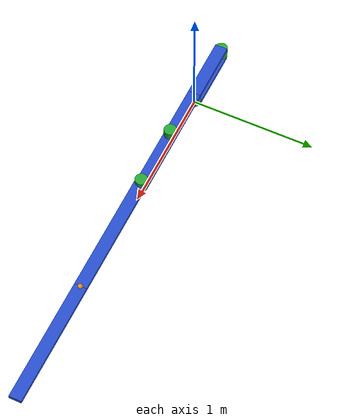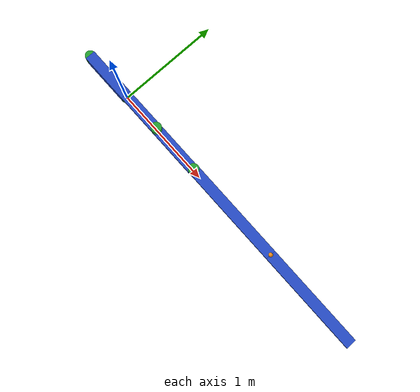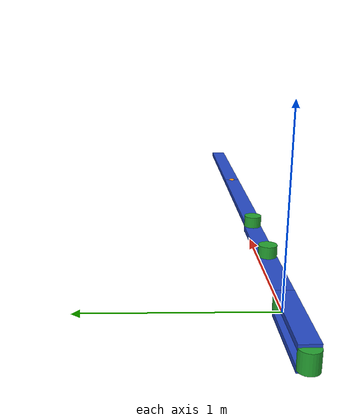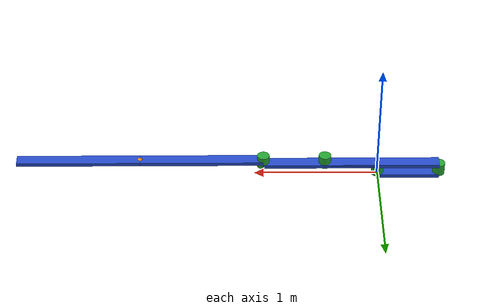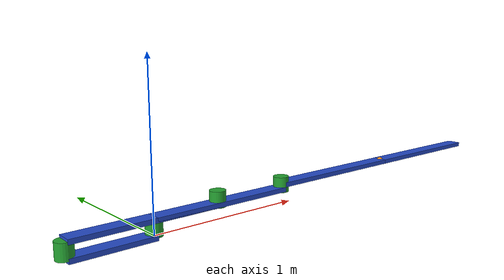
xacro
<?xml version="1.0"?>
<!-- Haptic Device -->
<robot xmlns:xacro="http://www.ros.org/wiki/xacro" name="haptic">

    <!-- Import haptic urdf file -->
    <xacro:include filename="$(find haptic_description)/urdf/haptic.urdf" />

    <!-- Import haptic materials file -->
    <xacro:include filename="$(find haptic_description)/config/materials.urdf" />

    <!-- Import haptic ros2_control description -->
    <xacro:include filename="$(find haptic_description)/ros2_control/haptic.ros2_control.urdf" />

</robot>

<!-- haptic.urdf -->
<robot name = "haptic" xmlns:xacro="http://www.ros.org/wiki/xacro">

  <!-- Used for fixing robot to 'link1' -->
  <link name="world"/>

    <!-- ======================================== Base (Link 5) ============================================== -->
  <link name = "link5">
    <visual>
      <geometry>
        <box size = "0.10 0.50 0.03"/>
      </geometry>
      <material name = "blue"/>
      <origin xyz="-0.25 0 0" rpy="0 0 1.570796326794897" />
    </visual>
    <inertial>
      <mass value="1" />
      <origin xyz="-0.25 0 0" rpy="0 0 1.570796326794897" />
      <inertia ixx="1" ixy="0" ixz="0" iyy="1" iyz="0" izz="1" />
    </inertial>
    <collision>
      <geometry>
        <box size = "0.10 0.50 0.03"/>
      </geometry>
      <material name = "blue"/>
      <origin xyz = "0 0 0"/>
    </collision>
  </link>

  <joint name="base2world" type="fixed">
    <parent link="world"/>
    <child link="link5"/>
  </joint>

  <!-- =============================================== Joint 1 ============================================== -->
  <link name = "revolute1">
    <visual>
      <geometry>
        <cylinder length = "0.1" radius = "0.05"/>
      </geometry>
      <material name = "green"/>
      <origin xyz = "0 0 0.05"/>
    </visual>
    <inertial>
      <mass value="0.15" />
      <origin xyz="0 0 0" rpy="0 0 0" />
      <inertia ixx="0.5" ixy="0" ixz="0" iyy="0.5" iyz="0" izz="0.5" />
    </inertial>
    <collision>
      <geometry>
        <cylinder length = "0.1" radius = "0.05"/>
      </geometry>
      <material name = "green"/>
      <origin xyz = "0 0 0"/>
    </collision>
  </link>

  <joint name = "joint1" type="revolute">
    <parent link = "link5"/>
    <child link = "revolute1"/>
    <origin xyz = "0 0 0" rpy="0 0 0"/>
    <limit effort="1000.0" lower="-1.57" upper="1.57" velocity="0.5"/>
    <axis xyz = "0 0 1"/>
    <dynamics damping="0.2" friction="0.1" />
  </joint>

  <!-- =============================================== Link 1 ============================================== -->
  <link name = "link1">
      <visual>
        <geometry>
          <box size = "0.03 0.1 0.93"/>
        </geometry>
        <material name = "blue"/>
        <origin rpy = "0 1.570796326794897 0" xyz = "0.465 0 0.1"/>
      </visual>
      <inertial>
        <mass value="0.5" />
        <origin xyz="0 0 0" rpy="0 0 0" />
        v<inertia ixx="0.5" ixy="0" ixz="0" iyy="0.5" iyz="0" izz="0.5" />
      </inertial>
      <collision>
        <geometry>
          <box size = "0.1 0.1 0.93"/>
        </geometry>
        <material name = "blue"/>
        <origin rpy = "0 1.571 0" xyz = "0.315 0 -0.25"/>
      </collision>
    </link>

    <joint name = "link12revolute1" type="fixed">
      <parent link = "revolute1"/>
      <child link = "link1"/>
      <origin xyz = "0 0 0"/>
    </joint>

<!-- =============================================== Joint 2 ============================================== -->

  <link name = "revolute2">
    <visual>
      <geometry>
        <cylinder length = "0.1" radius = "0.05"/>
      </geometry>
      <material name = "green"/>
      <origin xyz = "0 0 0"/>
    </visual>
    <inertial>
      <mass value="0.15" />
      <origin xyz="0 0 0" rpy="0 0 0" />
      <inertia ixx="0.5" ixy="0" ixz="0" iyy="0.5" iyz="0" izz="0.5" />
    </inertial>
    <collision>
      <geometry>
        <cylinder length = "0.1" radius = "0.05"/>
      </geometry>
      <material name = "green"/>
      <origin xyz = "0 0 0"/>
    </collision>
  </link>

  <joint name = "joint2" type="revolute">
    <parent link = "link1"/>
    <child link = "revolute2"/>
    <origin xyz = "0.93 0 0.13"/>
    <limit effort="1000.0" lower="-1.57" upper="1.57" velocity="0.5"/>
    <axis xyz = "0 0 1"/>
    <dynamics damping="0.2" friction="0.1" />
  </joint>

<!-- =============================================== Link 2 ============================================== -->
  <!-- link 2 -->
  <link name = "link2">
    <visual>
      <geometry>
        <box size = "0.03 0.1 1.0"/>
      </geometry>
      <material name = "blue"/>
      <origin rpy = "0 1.570796326794897 0" xyz = "0.5 0 0"/>
    </visual>
    <inertial>
      <mass value="0.5" />
      <origin rpy = "0 1.570796326794897 0" xyz = "0.5 0 0"/>
      v<inertia ixx="0.5" ixy="0" ixz="0" iyy="0.5" iyz="0" izz="0.5" />
    </inertial>
    <collision>
      <geometry>
        <box size = "0.03 0.1 0.75"/>
      </geometry>
      <material name = "blue"/>
      <origin rpy = "0 1.570796326794897 0" xyz = "0.5 0 0"/>
    </collision>
  </link>

  <joint name = "link22revolute2" type="fixed">
    <parent link = "revolute2"/>
    <child link = "link2"/>
    <origin xyz = "0 0 0"/>
  </joint>

<!-- =============================================== Joint 3 ============================================== -->
  <link name = "revolute3">
    <visual>
      <geometry>
        <sphere radius="0.025"/>
      </geometry>
      <material name = "orange"/>
      <origin rpy = "0 0 0" xyz = "0 0 0"/>
    </visual>
    <inertial>
      <mass value="0.5" />
      <origin xyz="0 0 0" rpy="0 0 0" />
      v<inertia ixx="0.5" ixy="0" ixz="0" iyy="0.5" iyz="0" izz="0.5" />
    </inertial>
    <collision>
      <geometry>
        <cylinder length = "0.1" radius = "0.05"/>
      </geometry>
      <material name = "orange"/>
      <origin rpy = "0 0 0" xyz = "0 0 0"/>
    </collision>
  </link>

  <joint name = "joint3" type="revolute">
    <parent link = "link2"/>
    <child link = "revolute3"/>
    <origin xyz = "1.0 0 0"/>
    <limit effort="1000.0" lower="-1.57" upper="1.57" velocity="0.5"/>
    <axis xyz = "0 0 1"/>
    <dynamics damping="0.2" friction="0.1" />
  </joint>

<!-- =============================================== Link 3 ============================================== -->

  <link name = "link3">
    <visual>
      <geometry>
        <box size = "0.03 0.1 1.0"/>
      </geometry>
      <material name = "blue"/>
      <origin rpy = "0 1.571 0" xyz = "0.5 0 0"/>
    </visual>
    <inertial>
      <mass value="0.5" />
      <origin rpy = "0 1.571 0" xyz = "0.375 0 0"/>
      v<inertia ixx="0.5" ixy="0" ixz="0" iyy="0.5" iyz="0" izz="0.5" />
    </inertial>
    <collision>
      <geometry>
        <box size = "0.03 0.1 0.63"/>
      </geometry>
      <material name = "blue"/>
      <origin rpy = "0 1.571 0" xyz = "0.375 0 0"/>
    </collision>
  </link>

  <joint name = "link32revolute3" type="fixed">
    <parent link = "revolute3"/>
    <child link = "link3"/>
    <origin xyz = "0 0 0"/>
  </joint>

<!-- =============================================== Joint 5 ============================================== -->

  <link name = "revolute5">
    <visual>
      <geometry>
        <cylinder length = "0.1" radius = "0.05"/>
      </geometry>
      <material name = "green"/>
      <origin xyz = "0 0 0"/>
    </visual>
    <inertial>
      <mass value="0.5" />
      <origin xyz="0 0 0" rpy="0 0 0" />
      <inertia ixx="0.5" ixy="0" ixz="0" iyy="0.5" iyz="0" izz="0.5" />
    </inertial>
    <collision>
      <geometry>
        <cylinder length = "0.1" radius = "0.05"/>
      </geometry>
      <material name = "green"/>
      <origin xyz = "0 0 0.1"/>
    </collision>
  </link>

  <joint name = "joint5" type="revolute">
    <parent link = "link5"/>
    <child link = "revolute5"/>
    <origin xyz = "-0.5 0 0.05" rpy="0 0 0"/>
    <limit effort="1000.0" lower="-1.57" upper="1.57" velocity="0.5"/>
    <axis xyz = "0 0 1"/>
    <dynamics damping="0.2" friction="0.1" />
  </joint>

<!-- =============================================== Link 4 ============================================== -->

  <link name = "link4">
    <visual>
      <geometry>
        <box size = "0.03 0.1 0.93"/>
      </geometry>
      <material name = "blue"/>
      <origin rpy = "0 1.571 0" xyz = "0.465 0.0 0.05"/>
    </visual>
    <inertial>
      <mass value="0.5" />
      <origin xyz="0.315 0 -0.25" rpy="0 0 0" />
      v<inertia ixx="0.5" ixy="0" ixz="0" iyy="0.5" iyz="0" izz="0.5" />
    </inertial>
    <collision>
      <geometry>
        <box size = "0.1 0.1 0.425"/>
      </geometry>
      <material name = "blue"/>
      <origin rpy = "0 1.571 0" xyz = "0.315 0 -0.25"/>
    </collision>
  </link>

  <joint name = "link42revolute5" type="fixed">
    <parent link = "revolute5"/>
    <child link = "link4"/>
    <origin xyz = "0 0 0"/>
  </joint>

<!-- =============================================== Joint 4 ============================================== -->

  <link name = "revolute4">
    <visual>
      <geometry>
        <cylinder length = "0.1" radius = "0.05"/>
      </geometry>
      <material name = "green"/>
      <origin rpy = "0 0 0" xyz = "0 0 0"/>
    </visual>
    <inertial>
      <mass value="0.5" />
      <origin xyz="0 0 0" rpy="0 0 0" />
      v<inertia ixx="0.5" ixy="0" ixz="0" iyy="0.5" iyz="0" izz="0.5" />
    </inertial>
    <collision>
      <geometry>
        <cylinder length = "0.1" radius = "0.05"/>
      </geometry>
      <material name = "green"/>
      <origin rpy = "0 0 0" xyz = "0 0 0"/>
    </collision>
  </link>

  <joint name = "joint4" type="revolute">
    <parent link = "link4"/>
    <child link = "revolute4"/>
    <origin xyz = "0.93 0 0.08"/>
    <limit effort="1000.0" lower="-1.57" upper="1.57" velocity="0.5"/>
    <axis xyz = "0 0 1"/>
    <dynamics damping="0.2" friction="0.1" />
  </joint>

  <link name="tool0"/>

  <joint name="tool02revolute1" type="fixed">
      <origin rpy="0 0 0" xyz="0 0 0"/>
      <parent link="revolute1"/>
      <child link="tool0"/>
      <axis xyz="0 0 0"/>
  </joint>

</robot>
